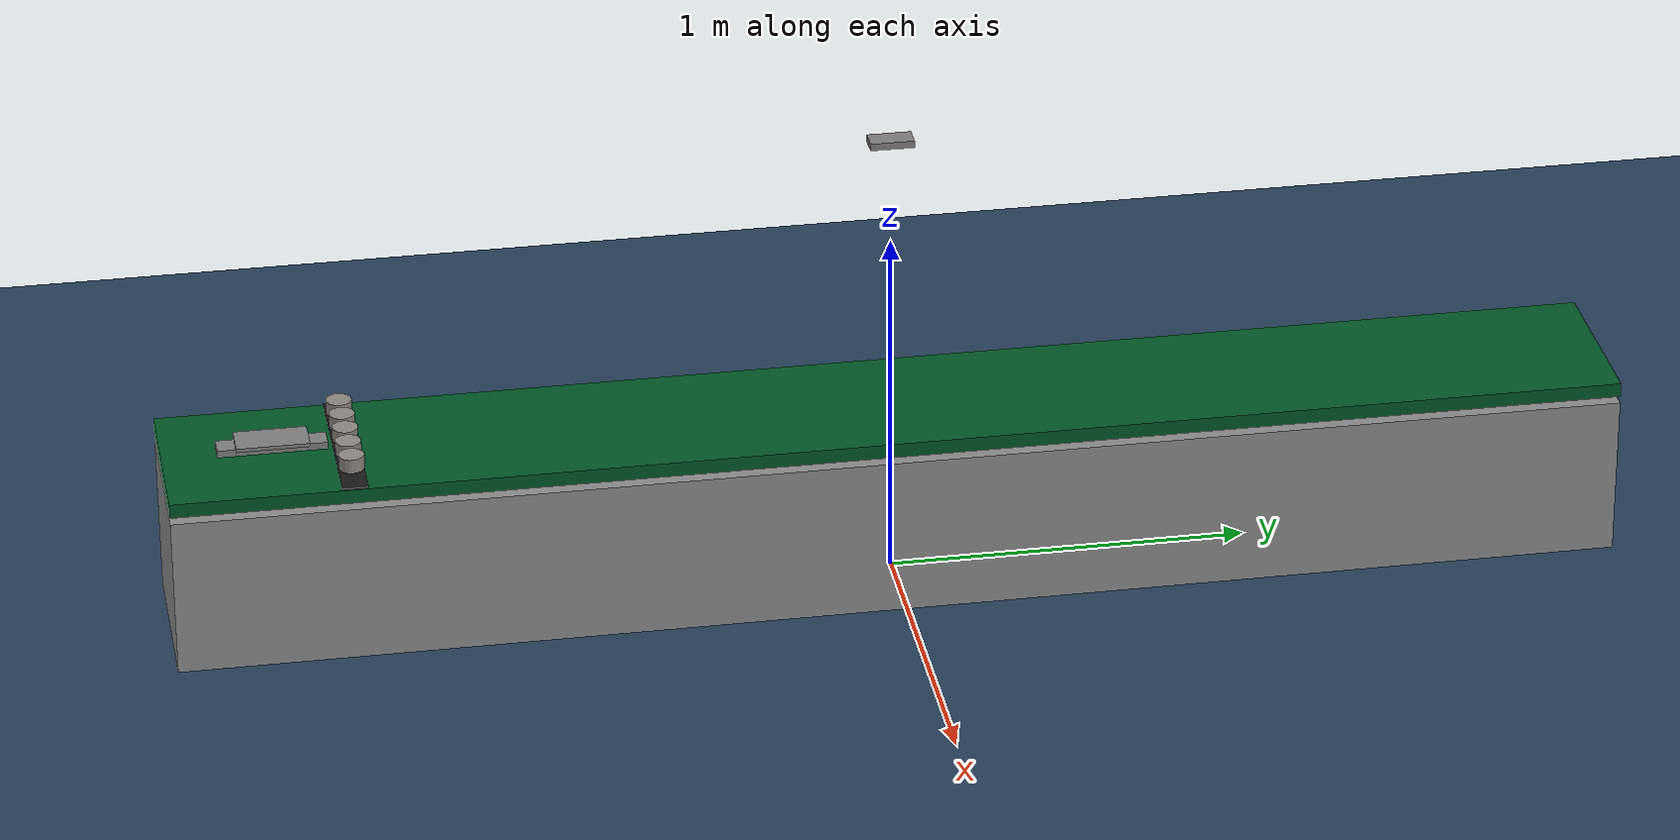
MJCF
<mujoco model="ur5e scene">

  <include file="conveyor3.xml"/>

  <worldbody>

  </worldbody>

</mujoco>

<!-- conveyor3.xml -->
<mujoco model="ur5e scene">
  <!-- ENGINE SETUP -->
  <compiler angle="radian" meshdir="universal_robots_ur5e/assets" autolimits="true" />
  <option timestep="0.001" integrator="Euler">
    <flag multiccd="enable" />
  </option>
  <statistic center="0.3 0 0.4" extent="3" />

  <!-- Defaults -->
  <default class="main">
    <default class="circularItems">
      <geom type="cylinder" size="0.035 0.02 0" mass="0.1" solref="0.006 1" condim="1"
        material="tin_material" />
      <joint type="free" />
    </default>
  </default>

  <!-- Actuators -->
  <actuator>
    <position name="pusher" joint="pusher_joint" ctrlrange="0.01 0.15" kp="1000" />
    <position name="slide_x" joint="slide_x" ctrlrange="-0.25 0.25" kp="1000" />
  </actuator>

  <!-- Sensor -->
  <sensor>
    <framepos name="can1_pos" objtype="body" objname="can1" />
    <rangefinder name="camera_range" site="range_site" cutoff="2"/>
  </sensor>
  <!-- Lighting -->
  <visual>
    <headlight diffuse="0.6 0.6 0.6" ambient="0.1 0.1 0.1" specular="0 0 0" />
    <rgba haze="0.15 0.25 0.35 1" />
    <global azimuth="120" elevation="-20" offwidth="640" offheight="480" />
  </visual>

  <!-- Assets -->
  <asset>
    <texture type="skybox" builtin="gradient" rgb1="0.3 0.5 0.7" rgb2="0 0 0" width="512"
      height="3072" />
    <texture type="2d" name="groundplane" builtin="checker" mark="edge" rgb1="0.2 0.3 0.4"
      rgb2="0.1 0.2 0.3"
      markrgb="0.8 0.8 0.8" width="300" height="300" />
    <material name="groundplane" texture="groundplane" texuniform="true" texrepeat="5 5"
      reflectance="0.2" />

    <texture type="2d" name="conveyor" builtin="gradient" mark="edge" rgb1="0.5 0.1 0.1"
      rgb2="0.8 0.1 0.1"
      markrgb="0.8 0.8 0.8" width="300" height="300" />
    <material name="conveyor" texture="conveyor" texuniform="true" texrepeat="1 1" reflectance="0.2" />

    <material name="conveyor_simple_material" rgba="0 0.34 0.15 1" shininess="0.9" reflectance="0.5" />

    <material name="tin_material" rgba="0.75 0.75 0.75 1" reflectance="0.5" texuniform="false"
      texture="tin_texture" />
    <!-- Check the doc for conventions. It is not obvious -->
    <texture name="tin_texture" type="cube" filefront="tunafront.png" fileback="tunafront.png"
      filedown="tunadown.png" fileup="tunaup.png" fileleft="tunaleft.png" fileright="tunaright.png" />
  </asset>

  <!-- MODEL TREE STARTS HERE -->
  <worldbody>
    <light pos="0 0 1.5" dir="0.4 0 -1" directional="true" />
    <geom name="floor" size="0 0 0.05" type="plane" material="groundplane" condim="4" />

    <!-- Camera model -->
    <body pos="0 0 1.3" euler="0 0 1.5708">
      <geom size="0.06 0.03 0.01" type="box" />
      <site name="range_site" size="0.005 0.005 0.005" type="box" euler="3.14159 0 0" />
      <camera name="rgbcam" mode="fixed" fovy="48.8" />
    </body>

    <!-- Conveyor -->
    <body pos="0 0 0.5">
      <!-- Conveyor top surface -->
      <geom name="conveyor_geom" pos="0 0 -0.01" size="0.25 2 0.02" type="box"
        material="conveyor_simple_material" condim="1" solref="0.006 1" />
      <geom name="conveyor_friction_strip" pos="0 -1.5 0" size="0.25 0.035 0.015" type="box"
        rgba="0.1 0.1 0.1 1" friction="0.6 0.005 0.0001" condim="3" solref="0.006 1" />

      <!-- Conveyor bottom -->
      <geom type="box" pos="0 0 -0.3" size="0.25 2 0.25" rgba="0.55 0.55 0.55 1" />

      <body pos="0 -1.7 0">
        <!-- Mobile platform -->
        <geom type="box" pos="0 0 0.05" size="0.05 0.1 0.005" />
        <body>
          <!-- pusher plate -->
          <geom size="0.03 0.15 0.01" pos="0 0 0.033" type="box" condim="1" solref="0.006 1" density="100"/>
          <joint name="pusher_joint" type="slide" axis="0 1 0" damping="200" />
        </body>

        <!-- platform slider -->
        <joint name="slide_x" type="slide" axis="1 0 0" damping="100" />
      </body>

    </body>

    <body pos="-0.16 -1.5 0.55" childclass="circularItems">
      <geom />
      <joint />
    </body>
    <body pos="-0.08 -1.5 0.55" childclass="circularItems">
      <geom />
      <joint />
    </body>
    <body pos="0 -1.5 0.55" name="can1" childclass="circularItems">
      <geom />
      <joint />
    </body>
    <body pos="0.08 -1.5 0.55" childclass="circularItems">
      <geom />
      <joint />
    </body>
    <body pos="0.16 -1.5 0.55" childclass="circularItems">
      <geom />
      <joint />
    </body>

  </worldbody>

</mujoco>
